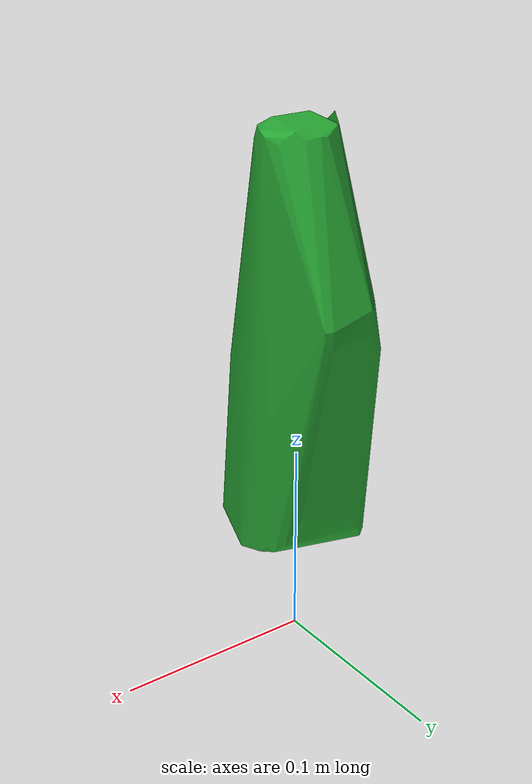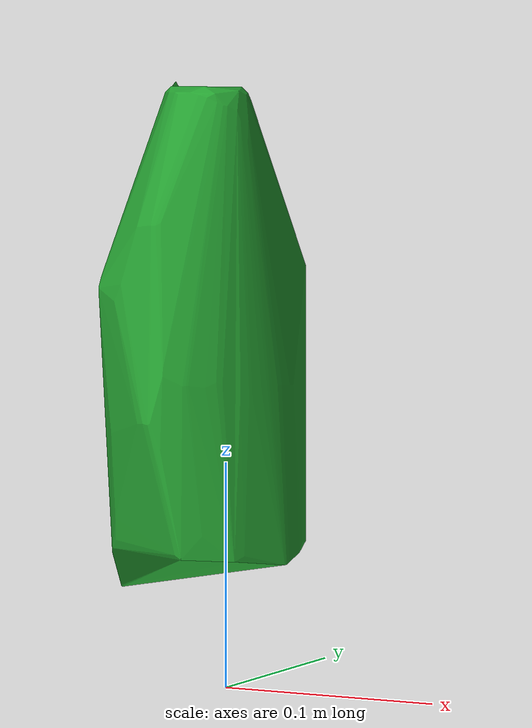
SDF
<?xml version='1.0'?>
<sdf version="1.4">
  <model name="listerine_green">
    <static>false</static>
    <link name="link">
      <inertial>
        <pose>-0.007153088569906357 -0.00679443183697797 0.14438646368389196 -3.109726246268593 0.015419105071652393 2.8264508988864594</pose>
        <mass>0.08495032704467784</mass>
        <inertia>
          <ixx>0.0002873832642874992</ixx>
          <ixy>-1.1739764281861223e-20</ixy>
          <ixz>-2.000840507446852e-21</ixz>
          <iyy>0.0002618601199784802</iyy>
          <iyz>-3.078138320085333e-21</iyz>
          <izz>6.604428543541794e-05</izz>
        </inertia>
      </inertial>
      <collision name="collision">
        <geometry>
          <mesh>
            <!-- Use a downsampled mesh for collisions -->
            <uri>model:///listerine_green/listerine_green_250_collision.obj</uri>
	        </mesh>
        </geometry>
        <surface>
      </surface>
      </collision>
      <visual name="visual">
        <geometry>
          <mesh>
            <uri>model:///listerine_green/optimized_tsdf_texture_mapped_mesh.obj</uri>
	        </mesh>
        </geometry>
        <material>
          <script>
            <uri>model:///listerine_green/listerine_green.material</uri>
            <name>listerine_green</name>
          </script>
        </material>
      </visual>
    </link>
  </model>
</sdf>
